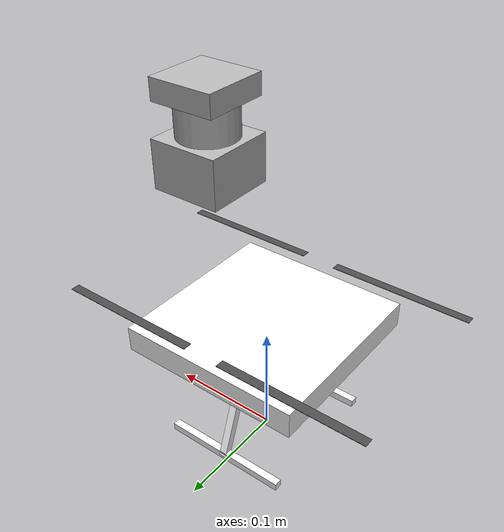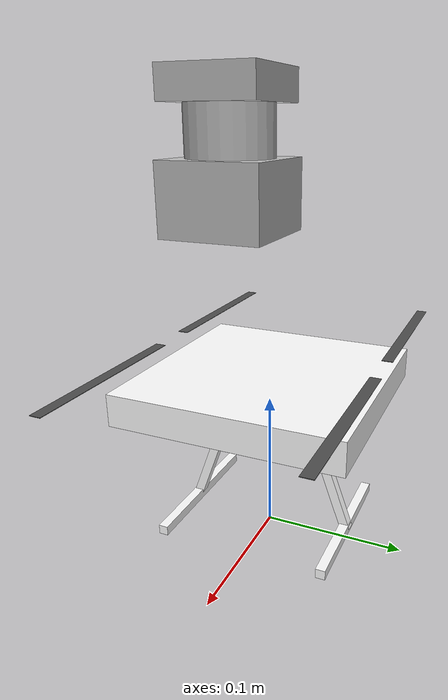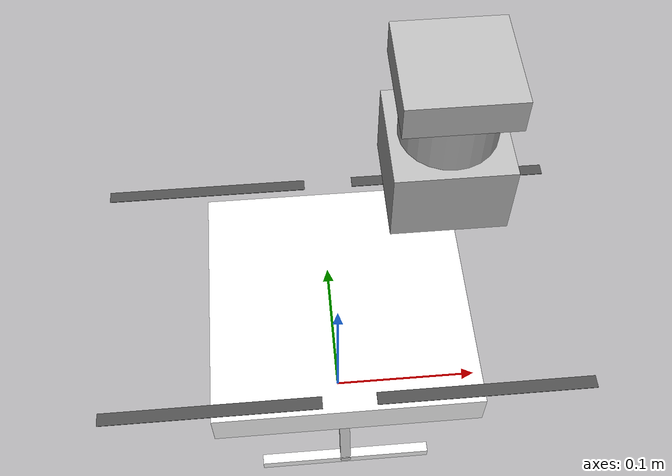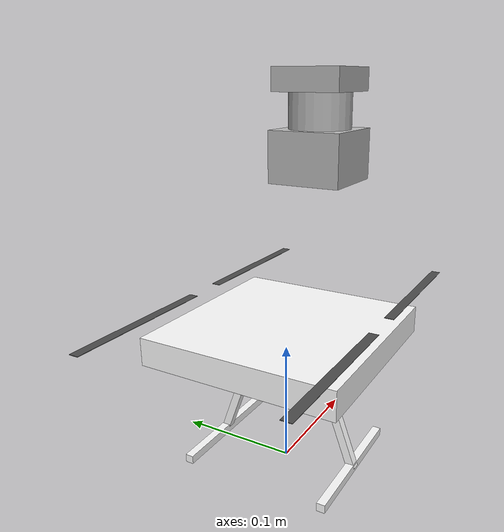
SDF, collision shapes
<?xml version='1.0' encoding='utf-8'?>
<sdf version="1.9">
  <model name="wanda">
    <pose>0 0 0.108 0 0 0</pose>
    <self_collide>false</self_collide>
    <static>false</static>
    <link name="base_link">
      <inertial>
        <mass>2</mass>
        <inertia>
          <ixx>0.0216667</ixx>
          <ixy>0</ixy>
          <ixz>0</ixz>
          <iyy>0.0216667</iyy>
          <iyz>0</iyz>
          <izz>0.04</izz>
        </inertia>
      </inertial>
      <gravity>true</gravity>
      <velocity_decay />
      <visual name="base_link_visual">
        <pose>0 0 0.01125 0 0 3.141592654</pose>
        <geometry>
          <mesh>
            <scale>0.45 0.45 0.45</scale>
            <uri>model://x500_base/meshes/NXP-HGD-CF.dae</uri>
          </mesh>
        </geometry>
      </visual>
      <visual name="5010_motor_base_0">
        <pose>0.0783 0.0783 0.0144 0 0 -.45</pose>
        <geometry>
          <mesh>
            <scale>0.45 0.45 0.45</scale>
            <uri>model://x500_base/meshes/5010Base.dae</uri>
          </mesh>
        </geometry>
      </visual>
      <visual name="5010_motor_base_1">
        <pose>-0.0783 0.0783 0.0144 0 0 -.45</pose>
        <geometry>
          <mesh>
            <scale>0.45 0.45 0.45</scale>
            <uri>model://x500_base/meshes/5010Base.dae</uri>
          </mesh>
        </geometry>
      </visual>
      <visual name="5010_motor_base_2">
        <pose>0.0783 -0.0783 0.0144 0 0 -.45</pose>
        <geometry>
          <mesh>
            <scale>0.45 0.45 0.45</scale>
            <uri>model://x500_base/meshes/5010Base.dae</uri>
          </mesh>
        </geometry>
      </visual>
      <visual name="5010_motor_base_3">
        <pose>-0.0783 -0.0783 0.0144 0 0 -.45</pose>
        <geometry>
          <mesh>
            <scale>0.45 0.45 0.45</scale>
            <uri>model://x500_base/meshes/5010Base.dae</uri>
          </mesh>
        </geometry>
      </visual>
      <visual name="NXP_FMUK66_FRONT">
        <pose>0.02115 0.00045 0.01935 1 0 1.57</pose>
        <cast_shadows>false</cast_shadows>
        <geometry>
          <plane>
            <normal>0 0 1</normal>
            <size>0.00585 0.00315</size>
          </plane>
        </geometry>
        <material>
          <diffuse>1.0 1.0 1.0</diffuse>
          <specular>1.0 1.0 1.0</specular>
          <pbr>
            <metal>
              <albedo_map>model://x500_base/materials/textures/nxp.png</albedo_map>
            </metal>
          </pbr>
        </material>
      </visual>
      <visual name="NXP_FMUK66_TOP">
        <pose>-0.01035 0 0.023175 0 0 -1.57</pose>
        <cast_shadows>false</cast_shadows>
        <geometry>
          <plane>
            <normal>0 0 1</normal>
            <size>0.00585 0.00315</size>
          </plane>
        </geometry>
        <material>
          <diffuse>1.0 1.0 1.0</diffuse>
          <specular>1.0 1.0 1.0</specular>
          <pbr>
            <metal>
              <albedo_map>model://x500_base/materials/textures/nxp.png</albedo_map>
            </metal>
          </pbr>
        </material>
      </visual>
      <visual name="RDDRONE_FMUK66_TOP">
        <pose>-0.0135 0 0.023175 0 0 -1.57</pose>
        <cast_shadows>false</cast_shadows>
        <geometry>
          <plane>
            <normal>0 0 1</normal>
            <size>0.0144 0.00153</size>
          </plane>
        </geometry>
        <material>
          <diffuse>1.0 1.0 1.0</diffuse>
          <specular>1.0 1.0 1.0</specular>
          <pbr>
            <metal>
              <albedo_map>model://x500_base/materials/textures/rd.png</albedo_map>
            </metal>
          </pbr>
        </material>
      </visual>
      <collision name="base_link_collision_0">
        <pose>0 0 0.00315 0 0 0</pose>
        <geometry>
          <box>
            <size>0.159099 0.159099 0.0225</size>
          </box>
        </geometry>
        <surface>
          <contact>
            <ode>
              <min_depth>0.001</min_depth>
              <max_vel>0</max_vel>
            </ode>
          </contact>
          <friction>
            <ode />
          </friction>
        </surface>
      </collision>
      <collision name="base_link_collision_1">
        <pose>0 -0.0441 -0.05535 -0.35 0 0</pose>
        <geometry>
          <box>
            <size>0.00675 0.00675 0.0945</size>
          </box>
        </geometry>
        <surface>
          <contact>
            <ode>
              <min_depth>0.001</min_depth>
              <max_vel>0</max_vel>
            </ode>
          </contact>
          <friction>
            <ode />
          </friction>
        </surface>
      </collision>
      <collision name="base_link_collision_2">
        <pose>0 0.0441 -0.05535 0.35 0 0</pose>
        <geometry>
          <box>
            <size>0.00675 0.00675 0.0945</size>
          </box>
        </geometry>
        <surface>
          <contact>
            <ode>
              <min_depth>0.001</min_depth>
              <max_vel>0</max_vel>
            </ode>
          </contact>
          <friction>
            <ode />
          </friction>
        </surface>
      </collision>
      <collision name="base_link_collision_3">
        <pose>0 -0.0594 -0.098775 0 0 0</pose>
        <geometry>
          <box>
            <size>0.1125 0.00675 0.00675</size>
          </box>
        </geometry>
        <surface>
          <contact>
            <ode>
              <min_depth>0.001</min_depth>
              <max_vel>0</max_vel>
            </ode>
          </contact>
          <friction>
            <ode />
          </friction>
        </surface>
      </collision>
      <collision name="base_link_collision_4">
        <pose>0 0.0594 -0.098775 0 0 0</pose>
        <geometry>
          <box>
            <size>0.1125 0.00675 0.00675</size>
          </box>
        </geometry>
        <surface>
          <contact>
            <ode>
              <min_depth>0.001</min_depth>
              <max_vel>0</max_vel>
            </ode>
          </contact>
          <friction>
            <ode />
          </friction>
        </surface>
      </collision>
      <sensor name="air_pressure_sensor" type="air_pressure">
        <gz_frame_id>base_link</gz_frame_id>
        <always_on>1</always_on>
        <update_rate>50</update_rate>
        <air_pressure>
          <pressure>
            <noise type="gaussian">
              <mean>0</mean>
              <stddev>3</stddev>
            </noise>
          </pressure>
        </air_pressure>
      </sensor>
      <sensor name="magnetometer_sensor" type="magnetometer">
        <gz_frame_id>base_link</gz_frame_id>
        <always_on>1</always_on>
        <update_rate>100</update_rate>
        <magnetometer>
          <x>
            <noise type="gaussian">
              <stddev>0.0001</stddev>
            </noise>
          </x>
          <y>
            <noise type="gaussian">
              <stddev>0.0001</stddev>
            </noise>
          </y>
          <z>
            <noise type="gaussian">
              <stddev>0.0001</stddev>
            </noise>
          </z>
        </magnetometer>
      </sensor>
      <sensor name="imu_sensor" type="imu">
        <gz_frame_id>base_link</gz_frame_id>
        <always_on>1</always_on>
        <update_rate>250</update_rate>
        <imu>
          <angular_velocity>
            <x>
              <noise type="gaussian">
                <mean>0.0</mean>
                <stddev>0.0008726646</stddev>
              </noise>
            </x>
            <y>
              <noise type="gaussian">
                <mean>0.0</mean>
                <stddev>0.0008726646</stddev>
              </noise>
            </y>
            <z>
              <noise type="gaussian">
                <mean>0.0</mean>
                <stddev>0.0008726646</stddev>
              </noise>
            </z>
          </angular_velocity>
          <linear_acceleration>
            <x>
              <noise type="gaussian">
                <mean>0.0</mean>
                <stddev>0.00637</stddev>
              </noise>
            </x>
            <y>
              <noise type="gaussian">
                <mean>0.0</mean>
                <stddev>0.00637</stddev>
              </noise>
            </y>
            <z>
              <noise type="gaussian">
                <mean>0.0</mean>
                <stddev>0.00686</stddev>
              </noise>
            </z>
          </linear_acceleration>
        </imu>
      </sensor>
      <sensor name="navsat_sensor" type="navsat">
        <gz_frame_id>base_link</gz_frame_id>
        <always_on>1</always_on>
        <update_rate>30</update_rate>
      </sensor>
    </link>
    <link name="rotor_0">
      <gravity>true</gravity>
      <self_collide>false</self_collide>
      <velocity_decay />
      <pose>0.0783 -0.0783 0.027 0 0 0</pose>
      <inertial>
        <mass>0.0160769</mass>
        <inertia>
          <ixx>3.84649e-07</ixx>
          <iyy>2.61159e-05</iyy>
          <izz>2.64986e-05</izz>
        </inertia>
      </inertial>
      <visual name="rotor_0_visual">
        <pose>-0.0099 -0.0658731 -0.0072 0 0 0</pose>
        <geometry>
          <mesh>
            <scale>0.380769 0.380769 0.380769</scale>
            <uri>model://x500_base/meshes/1345_prop_ccw.stl</uri>
          </mesh>
        </geometry>
        <material>
          <script>
            <name>Gazebo/DarkGrey</name>
            <uri>file://media/materials/scripts/gazebo.material</uri>
          </script>
        </material>
      </visual>
      <visual name="rotor_0_visual_motor_bell">
        <pose>0 0 -0.0144 0 0 0</pose>
        <geometry>
          <mesh>
            <scale>0.45 0.45 0.45</scale>
            <uri>model://x500_base/meshes/5010Bell.dae</uri>
          </mesh>
        </geometry>
      </visual>
      <collision name="rotor_0_collision">
        <pose>0 0 0 0 0 0</pose>
        <geometry>
          <box>
            <size>0.125654 0.00761538 0.000380769</size>
          </box>
        </geometry>
        <surface>
          <contact>
            <ode>
              <min_depth>0.001</min_depth>
              <max_vel>0</max_vel>
            </ode>
          </contact>
          <friction>
            <ode />
          </friction>
        </surface>
      </collision>
    </link>
    <joint name="rotor_0_joint" type="revolute">
      <parent>base_link</parent>
      <child>rotor_0</child>
      <axis>
        <xyz>0 0 1</xyz>
        <limit>
          <lower>-1e+16</lower>
          <upper>1e+16</upper>
        </limit>
        <dynamics>
          <spring_reference>0</spring_reference>
          <spring_stiffness>0</spring_stiffness>
        </dynamics>
      </axis>
    </joint>
    <link name="rotor_1">
      <gravity>true</gravity>
      <self_collide>false</self_collide>
      <velocity_decay />
      <pose>-0.0783 0.0783 0.027 0 0 0</pose>
      <inertial>
        <mass>0.0160769</mass>
        <inertia>
          <ixx>3.84649e-07</ixx>
          <iyy>2.61159e-05</iyy>
          <izz>2.64986e-05</izz>
        </inertia>
      </inertial>
      <visual name="rotor_1_visual">
        <pose>-0.0099 -0.0658731 -0.0072 0 0 0</pose>
        <geometry>
          <mesh>
            <scale>0.380769 0.380769 0.380769</scale>
            <uri>model://x500_base/meshes/1345_prop_ccw.stl</uri>
          </mesh>
        </geometry>
        <material>
          <script>
            <name>Gazebo/DarkGrey</name>
            <uri>file://media/materials/scripts/gazebo.material</uri>
          </script>
        </material>
      </visual>
      <visual name="rotor_1_visual_motor_top">
        <pose>0 0 -0.0144 0 0 0</pose>
        <geometry>
          <mesh>
            <scale>0.45 0.45 0.45</scale>
            <uri>model://x500_base/meshes/5010Bell.dae</uri>
          </mesh>
        </geometry>
      </visual>
      <collision name="rotor_1_collision">
        <pose>0 0 0 0 0 0</pose>
        <geometry>
          <box>
            <size>0.125654 0.00761538 0.000380769</size>
          </box>
        </geometry>
        <surface>
          <contact>
            <ode>
              <min_depth>0.001</min_depth>
              <max_vel>0</max_vel>
            </ode>
          </contact>
          <friction>
            <ode />
          </friction>
        </surface>
      </collision>
    </link>
    <joint name="rotor_1_joint" type="revolute">
      <parent>base_link</parent>
      <child>rotor_1</child>
      <axis>
        <xyz>0 0 1</xyz>
        <limit>
          <lower>-1e+16</lower>
          <upper>1e+16</upper>
        </limit>
        <dynamics>
          <spring_reference>0</spring_reference>
          <spring_stiffness>0</spring_stiffness>
        </dynamics>
      </axis>
    </joint>
    <link name="rotor_2">
      <gravity>true</gravity>
      <self_collide>false</self_collide>
      <velocity_decay />
      <pose>0.0783 0.0783 0.027 0 0 0</pose>
      <inertial>
        <mass>0.0160769</mass>
        <inertia>
          <ixx>3.84649e-07</ixx>
          <iyy>2.61159e-05</iyy>
          <izz>2.64986e-05</izz>
        </inertia>
      </inertial>
      <visual name="rotor_2_visual">
        <pose>-0.0099 -0.0658731 -0.0072 0 0 0</pose>
        <geometry>
          <mesh>
            <scale>0.380769 0.380769 0.380769</scale>
            <uri>model://x500_base/meshes/1345_prop_cw.stl</uri>
          </mesh>
        </geometry>
        <material>
          <script>
            <name>Gazebo/DarkGrey</name>
            <uri>file://media/materials/scripts/gazebo.material</uri>
          </script>
        </material>
      </visual>
      <visual name="rotor_2_visual_motor_top">
        <pose>0 0 -0.0144 0 0 0</pose>
        <geometry>
          <mesh>
            <scale>0.45 0.45 0.45</scale>
            <uri>model://x500_base/meshes/5010Bell.dae</uri>
          </mesh>
        </geometry>
      </visual>
      <collision name="rotor_2_collision">
        <pose>0 0 0 0 0 0</pose>
        <geometry>
          <box>
            <size>0.125654 0.00761538 0.000380769</size>
          </box>
        </geometry>
        <surface>
          <contact>
            <ode>
              <min_depth>0.001</min_depth>
              <max_vel>0</max_vel>
            </ode>
          </contact>
          <friction>
            <ode />
          </friction>
        </surface>
      </collision>
    </link>
    <joint name="rotor_2_joint" type="revolute">
      <parent>base_link</parent>
      <child>rotor_2</child>
      <axis>
        <xyz>0 0 1</xyz>
        <limit>
          <lower>-1e+16</lower>
          <upper>1e+16</upper>
        </limit>
        <dynamics>
          <spring_reference>0</spring_reference>
          <spring_stiffness>0</spring_stiffness>
        </dynamics>
      </axis>
    </joint>
    <link name="rotor_3">
      <gravity>true</gravity>
      <self_collide>false</self_collide>
      <velocity_decay />
      <pose>-0.0783 -0.0783 0.027 0 0 0</pose>
      <inertial>
        <mass>0.0160769</mass>
        <inertia>
          <ixx>3.84649e-07</ixx>
          <iyy>2.61159e-05</iyy>
          <izz>2.64986e-05</izz>
        </inertia>
      </inertial>
      <visual name="rotor_3_visual">
        <pose>-0.0099 -0.0658731 -0.0072 0 0 0</pose>
        <geometry>
          <mesh>
            <scale>0.380769 0.380769 0.380769</scale>
            <uri>model://x500_base/meshes/1345_prop_cw.stl</uri>
          </mesh>
        </geometry>
        <material>
          <script>
            <name>Gazebo/DarkGrey</name>
            <uri>file://media/materials/scripts/gazebo.material</uri>
          </script>
        </material>
      </visual>
      <visual name="rotor_3_visual_motor_top">
        <pose>0 0 -0.0144 0 0 0</pose>
        <geometry>
          <mesh>
            <scale>0.45 0.45 0.45</scale>
            <uri>model://x500_base/meshes/5010Bell.dae</uri>
          </mesh>
        </geometry>
      </visual>
      <collision name="rotor_3_collision">
        <pose>0 0 0 0 0 0</pose>
        <geometry>
          <box>
            <size>0.125654 0.00761538 0.000380769</size>
          </box>
        </geometry>
        <surface>
          <contact>
            <ode>
              <min_depth>0.001</min_depth>
              <max_vel>0</max_vel>
            </ode>
          </contact>
          <friction>
            <ode />
          </friction>
        </surface>
      </collision>
    </link>
    <joint name="rotor_3_joint" type="revolute">
      <parent>base_link</parent>
      <child>rotor_3</child>
      <axis>
        <xyz>0 0 1</xyz>
        <limit>
          <lower>-1e+16</lower>
          <upper>1e+16</upper>
        </limit>
        <dynamics>
          <spring_reference>0</spring_reference>
          <spring_stiffness>0</spring_stiffness>
        </dynamics>
      </axis>
    </joint>
    <plugin filename="gz-sim-multicopter-motor-model-system" name="gz::sim::systems::MulticopterMotorModel">
      <jointName>rotor_0_joint</jointName>
      <linkName>rotor_0</linkName>
      <turningDirection>ccw</turningDirection>
      <timeConstantUp>0.0125</timeConstantUp>
      <timeConstantDown>0.025</timeConstantDown>
      <maxRotVelocity>1000</maxRotVelocity>
      <motorConstant>8.54858e-06</motorConstant>
      <momentConstant>0.016</momentConstant>
      <commandSubTopic>command/motor_speed</commandSubTopic>
      <motorNumber>0</motorNumber>
      <rotorDragCoefficient>8.06428e-05</rotorDragCoefficient>
      <rollingMomentCoefficient>1e-06</rollingMomentCoefficient>
      <rotorVelocitySlowdownSim>10</rotorVelocitySlowdownSim>
      <motorType>velocity</motorType>
    </plugin>
    <plugin filename="gz-sim-multicopter-motor-model-system" name="gz::sim::systems::MulticopterMotorModel">
      <jointName>rotor_1_joint</jointName>
      <linkName>rotor_1</linkName>
      <turningDirection>ccw</turningDirection>
      <timeConstantUp>0.0125</timeConstantUp>
      <timeConstantDown>0.025</timeConstantDown>
      <maxRotVelocity>1000</maxRotVelocity>
      <motorConstant>8.54858e-06</motorConstant>
      <momentConstant>0.016</momentConstant>
      <commandSubTopic>command/motor_speed</commandSubTopic>
      <motorNumber>1</motorNumber>
      <rotorDragCoefficient>8.06428e-05</rotorDragCoefficient>
      <rollingMomentCoefficient>1e-06</rollingMomentCoefficient>
      <rotorVelocitySlowdownSim>10</rotorVelocitySlowdownSim>
      <motorType>velocity</motorType>
    </plugin>
    <plugin filename="gz-sim-multicopter-motor-model-system" name="gz::sim::systems::MulticopterMotorModel">
      <jointName>rotor_2_joint</jointName>
      <linkName>rotor_2</linkName>
      <turningDirection>cw</turningDirection>
      <timeConstantUp>0.0125</timeConstantUp>
      <timeConstantDown>0.025</timeConstantDown>
      <maxRotVelocity>1000</maxRotVelocity>
      <motorConstant>8.54858e-06</motorConstant>
      <momentConstant>0.016</momentConstant>
      <commandSubTopic>command/motor_speed</commandSubTopic>
      <motorNumber>2</motorNumber>
      <rotorDragCoefficient>8.06428e-05</rotorDragCoefficient>
      <rollingMomentCoefficient>1e-06</rollingMomentCoefficient>
      <rotorVelocitySlowdownSim>10</rotorVelocitySlowdownSim>
      <motorType>velocity</motorType>
    </plugin>
    <plugin filename="gz-sim-multicopter-motor-model-system" name="gz::sim::systems::MulticopterMotorModel">
      <jointName>rotor_3_joint</jointName>
      <linkName>rotor_3</linkName>
      <turningDirection>cw</turningDirection>
      <timeConstantUp>0.0125</timeConstantUp>
      <timeConstantDown>0.025</timeConstantDown>
      <maxRotVelocity>1000</maxRotVelocity>
      <motorConstant>8.54858e-06</motorConstant>
      <momentConstant>0.016</momentConstant>
      <commandSubTopic>command/motor_speed</commandSubTopic>
      <motorNumber>3</motorNumber>
      <rotorDragCoefficient>8.06428e-05</rotorDragCoefficient>
      <rollingMomentCoefficient>1e-06</rollingMomentCoefficient>
      <rotorVelocitySlowdownSim>10</rotorVelocitySlowdownSim>
      <motorType>velocity</motorType>
    </plugin>
    <include merge="true">
      <uri>model://lidar_2d_v2</uri>
      <pose>0.054 0 0.117 0 0 0</pose>
    </include>
    <joint name="LidarJoint" type="fixed">
      <parent>base_link</parent>
      <child>link</child>
      <pose relative_to="base_link">-0.045 0 0.117 0 0 0</pose>
    </joint>
  </model>
</sdf>

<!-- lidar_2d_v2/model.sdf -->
<sdf version="1.6">
  <model name="lidar_2d_v2">
    <link name="link">
      <pose>0 0 0 0 0 0</pose>
      <inertial>
        <pose>0 0 0.0435 0 0 0</pose>
        <mass>0.37</mass>
        <inertia>
          <ixx>0.00034437749999999994</ixx>
          <ixy>0</ixy>
          <ixz>0</ixz>
          <iyy>0.00034437749999999994</iyy>
          <iyz>0</iyz>
          <izz>0.00022199999999999998</izz>
        </inertia>
      </inertial>
      <collision name="collision_base">
        <pose>0 0 0.0205 0 0 0</pose>
        <geometry>
          <box>
            <size>0.06 0.06 0.041</size>
          </box>
        </geometry>
      </collision>
      <collision name="collision_mid">
        <pose>0 0 0.055 0 0 0</pose>
        <geometry>
          <cylinder>
            <radius>0.025</radius>
            <length>0.028</length>
          </cylinder>
        </geometry>
      </collision>
      <collision name="collision_top">
        <pose>0 0 0.078 0 0 0</pose>
        <geometry>
          <box>
            <size>0.056 0.056 0.018</size>
          </box>
        </geometry>
      </collision>
      <visual name="visual">
        <geometry>
          <mesh>
            <uri>model://lidar_2d_v2/meshes/lidar_2d_v2.dae</uri>
          </mesh>
        </geometry>
      </visual>
      <sensor name="lidar_2d_v2" type="gpu_lidar">
        <pose>0 0 0.055 0 0 0</pose>
        <ray>
          <scan>
            <horizontal>
              <samples>1080</samples>
              <resolution>1</resolution>
              <min_angle>-2.356195</min_angle>
              <max_angle>2.356195</max_angle>
            </horizontal>
          </scan>
          <range>
            <min>0.1</min>
            <max>30</max>
            <resolution>0.01</resolution>
          </range>
          <noise>
            <type>gaussian</type>
            <mean>0.0</mean>
            <stddev>0.001</stddev>
          </noise>
        </ray>
        <always_on>0</always_on>
        <update_rate>30</update_rate>
        <visualize>false</visualize>
      </sensor>
    </link>
  </model>
</sdf>
